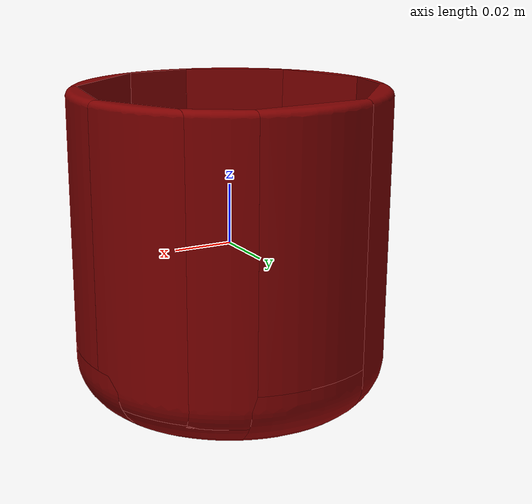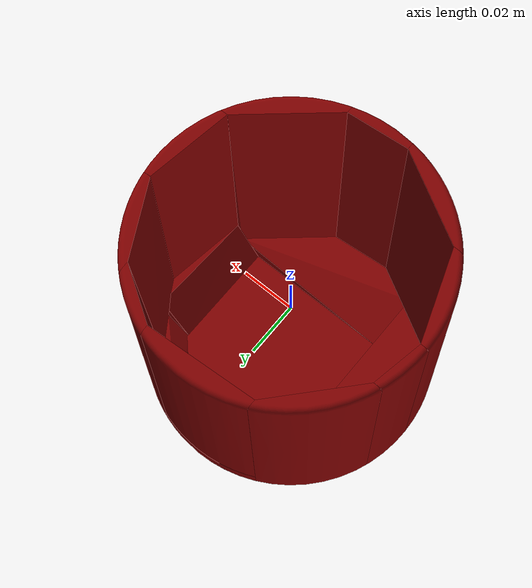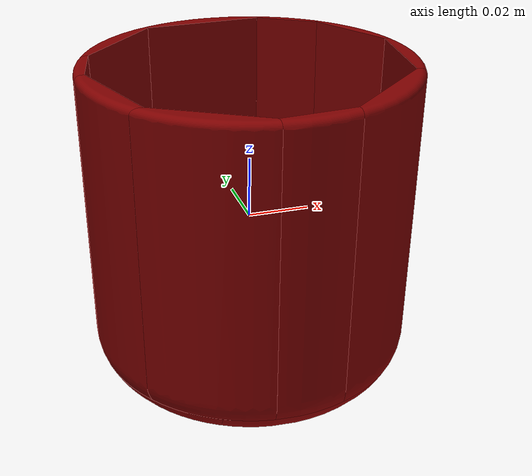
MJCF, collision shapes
<mujoco model="cup_10">
  <asset>
    <mesh file="visual/model_normalized_0.obj" name="model_normalized_0_vis" scale="0.10499999999999995 0.10499999999999995 0.10499999999999995" refquat="1.0 0.0 0.0 0.0"/>
    <material name="phong1SG.001" specular="0.5" shininess="0.0" rgba="0.100000 0.500000 0.030000 1.0"/>
    <mesh file="collision/collision_mesh_collision_0.obj" name="cup_collision_mesh_0" scale="0.10499999999999995 0.10499999999999995 0.10499999999999995" refquat="1.0 0.0 0.0 0.0"/>
    <mesh file="collision/collision_mesh_collision_1.obj" name="cup_collision_mesh_1" scale="0.10499999999999995 0.10499999999999995 0.10499999999999995" refquat="1.0 0.0 0.0 0.0"/>
    <mesh file="collision/collision_mesh_collision_2.obj" name="cup_collision_mesh_2" scale="0.10499999999999995 0.10499999999999995 0.10499999999999995" refquat="1.0 0.0 0.0 0.0"/>
    <mesh file="collision/collision_mesh_collision_3.obj" name="cup_collision_mesh_3" scale="0.10499999999999995 0.10499999999999995 0.10499999999999995" refquat="1.0 0.0 0.0 0.0"/>
    <mesh file="collision/collision_mesh_collision_4.obj" name="cup_collision_mesh_4" scale="0.10499999999999995 0.10499999999999995 0.10499999999999995" refquat="1.0 0.0 0.0 0.0"/>
    <mesh file="collision/collision_mesh_collision_5.obj" name="cup_collision_mesh_5" scale="0.10499999999999995 0.10499999999999995 0.10499999999999995" refquat="1.0 0.0 0.0 0.0"/>
    <mesh file="collision/collision_mesh_collision_6.obj" name="cup_collision_mesh_6" scale="0.10499999999999995 0.10499999999999995 0.10499999999999995" refquat="1.0 0.0 0.0 0.0"/>
    <mesh file="collision/collision_mesh_collision_7.obj" name="cup_collision_mesh_7" scale="0.10499999999999995 0.10499999999999995 0.10499999999999995" refquat="1.0 0.0 0.0 0.0"/>
    <mesh file="collision/collision_mesh_collision_8.obj" name="cup_collision_mesh_8" scale="0.10499999999999995 0.10499999999999995 0.10499999999999995" refquat="1.0 0.0 0.0 0.0"/>
    <mesh file="collision/collision_mesh_collision_9.obj" name="cup_collision_mesh_9" scale="0.10499999999999995 0.10499999999999995 0.10499999999999995" refquat="1.0 0.0 0.0 0.0"/>
    <mesh file="collision/collision_mesh_collision_10.obj" name="cup_collision_mesh_10" scale="0.10499999999999995 0.10499999999999995 0.10499999999999995" refquat="1.0 0.0 0.0 0.0"/>
    <mesh file="collision/collision_mesh_collision_11.obj" name="cup_collision_mesh_11" scale="0.10499999999999995 0.10499999999999995 0.10499999999999995" refquat="1.0 0.0 0.0 0.0"/>
    <mesh file="collision/collision_mesh_collision_12.obj" name="cup_collision_mesh_12" scale="0.10499999999999995 0.10499999999999995 0.10499999999999995" refquat="1.0 0.0 0.0 0.0"/>
    <mesh file="collision/collision_mesh_collision_13.obj" name="cup_collision_mesh_13" scale="0.10499999999999995 0.10499999999999995 0.10499999999999995" refquat="1.0 0.0 0.0 0.0"/>
    <mesh file="collision/collision_mesh_collision_14.obj" name="cup_collision_mesh_14" scale="0.10499999999999995 0.10499999999999995 0.10499999999999995" refquat="1.0 0.0 0.0 0.0"/>
    <mesh file="collision/collision_mesh_collision_15.obj" name="cup_collision_mesh_15" scale="0.10499999999999995 0.10499999999999995 0.10499999999999995" refquat="1.0 0.0 0.0 0.0"/>
  </asset>
  <default>
    <default class="region">
      <geom group="1" conaffinity="0" contype="0" rgba="0 1 0 0"/>
    </default>
    <default class="collision">
      <geom group="0" rgba="0.5 0 0 0.5" density="1000.0"/>
    </default>
  </default>
  <worldbody>
    <body>
      <body name="object">
        <geom solimp="0.998 0.998 0.001" solref="0.001 1" density="100" friction="0.95 0.3 0.1" type="mesh" mesh="model_normalized_0_vis" conaffinity="0" contype="0" group="1" material="phong1SG.001"/>
        <geom class="region" name="reg_bbox" type="box" pos="0.0 0.0 -9.828000000014488e-07" size="0.04298109689999998 0.043296468599999985 0.05249901719999998"/>
        <geom mesh="cup_collision_mesh_0" type="mesh" class="collision"/>
        <geom mesh="cup_collision_mesh_1" type="mesh" class="collision"/>
        <geom mesh="cup_collision_mesh_2" type="mesh" class="collision"/>
        <geom mesh="cup_collision_mesh_3" type="mesh" class="collision"/>
        <geom mesh="cup_collision_mesh_4" type="mesh" class="collision"/>
        <geom mesh="cup_collision_mesh_5" type="mesh" class="collision"/>
        <geom mesh="cup_collision_mesh_6" type="mesh" class="collision"/>
        <geom mesh="cup_collision_mesh_7" type="mesh" class="collision"/>
        <geom mesh="cup_collision_mesh_8" type="mesh" class="collision"/>
        <geom mesh="cup_collision_mesh_9" type="mesh" class="collision"/>
        <geom mesh="cup_collision_mesh_10" type="mesh" class="collision"/>
        <geom mesh="cup_collision_mesh_11" type="mesh" class="collision"/>
        <geom mesh="cup_collision_mesh_12" type="mesh" class="collision"/>
        <geom mesh="cup_collision_mesh_13" type="mesh" class="collision"/>
        <geom mesh="cup_collision_mesh_14" type="mesh" class="collision"/>
        <geom mesh="cup_collision_mesh_15" type="mesh" class="collision"/>
        <geom rgba="0 0 0 0" size="0.037 0.005" pos="0 0 0.036" type="cylinder" name="liquid" class="region"/>
        <geom rgba="0 0 0 0 " size="0.025 0.04" pos="0 0 0.01" type="cylinder" name="reg_int" class="region"/>
      </body>
    </body>
  </worldbody>
</mujoco>
